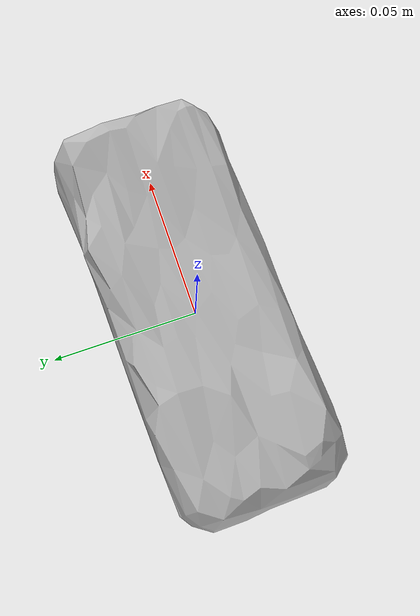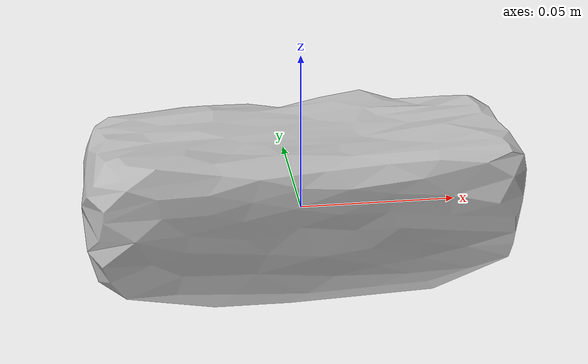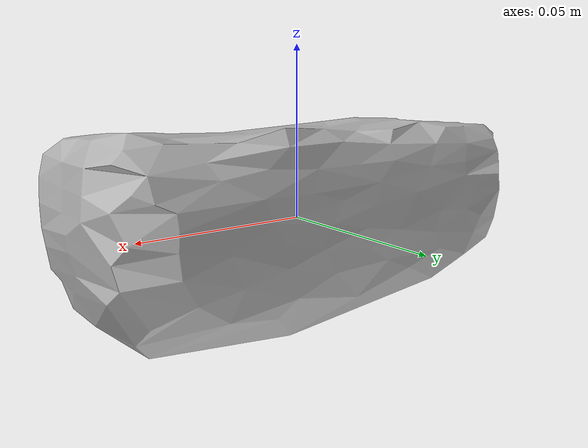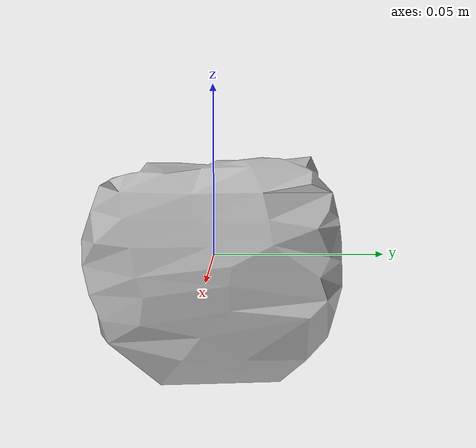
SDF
<?xml version="1.0" ?>
<sdf version="1.4">
  <model name="eraser">
    <link name="eraser_link">
      <inertial>
        <pose>0 0 0 0 0 0</pose>
        <mass>0.5</mass>
        <inertia>
        <ixx>0.4</ixx>
        <ixy>0</ixy>
        <ixz>0</ixz>
        <iyy>0.7</iyy>
        <iyz>0</iyz>
        <izz>0.7</izz>
        </inertia>
      </inertial>

      <visual name="eraser_visual">
        <pose>0 0 0 0 0 0</pose>
        <material>
          <script>
            <uri>model://eraser/materials/scripts</uri>
            <uri>model://eraser/materials/textures</uri>
            <name>eraser</name>
          </script>
        </material>
        <geometry>
          <mesh>
            <uri>model://eraser/meshes/eraser.dae</uri>
          </mesh>
        </geometry>
      </visual>

      <collision name="eraser_collision">
        <pose>0.0 0.0 0 0 0 0</pose>
        <geometry>
          <box>
            <size>0.135 0.06 0.05</size>
          </box>
        </geometry>
      </collision>

    </link>
  </model>
</sdf>
